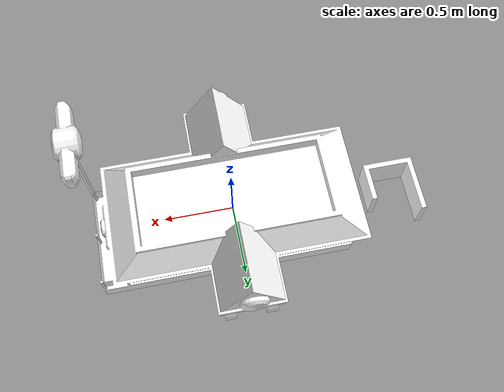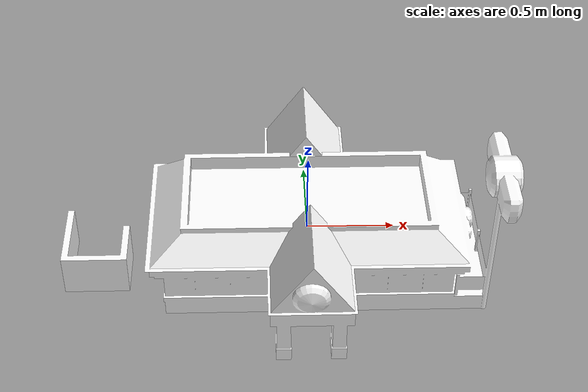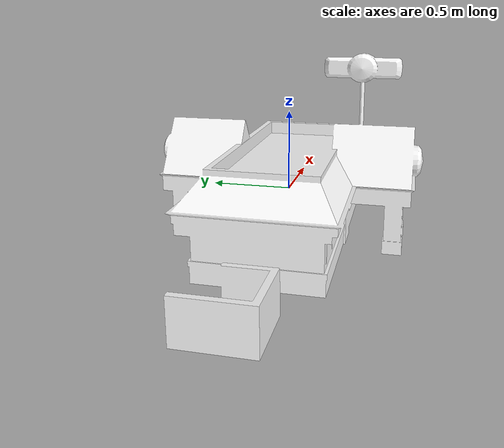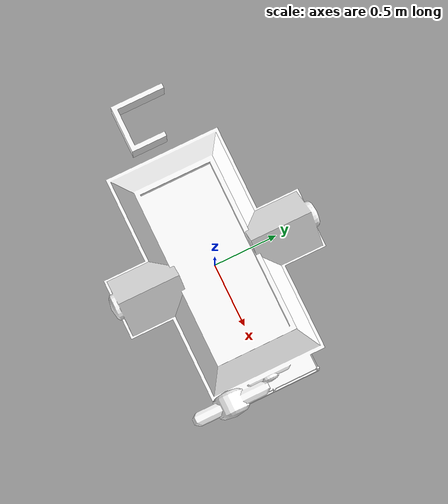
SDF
<?xml version="1.0" ?>
<sdf version="1.5">
  <model name="Fast Food">
    <plugin filename="gz-sim-contact-system"
          name="gz::sim::systems::Contact">
    </plugin>
    <static>true</static>
    <link name="link">
      <pose>0 0 0 0 0 0</pose>
      <collision name="collision">
        <geometry>
          <mesh>
            <scale>0.3 0.3 0.2</scale>
            <uri>model://fast_food/meshes/fast_food.dae</uri>
          </mesh>
        </geometry>
      </collision>
      <visual name="visual">
        <geometry>
          <mesh>
            <scale>0.3 0.3 0.2</scale>
            <uri>model://fast_food/meshes/fast_food.dae</uri>
          </mesh>
        </geometry>
        <material>
          <script>
            <uri>model://fast_food/materials/scripts</uri>
            <uri>model://fast_food/materials/textures</uri>
            <name>FastFood/Diffuse</name>
          </script>
          <diffuse>1.0 1.0 1.0</diffuse>
          <specular>1.0 1.0 1.0</specular>
          <pbr>
          <metal>
          <albedo_map>materials/textures/FastFood_Diffuse.png</albedo_map>
          </metal>
          </pbr>
          <shader type="normal_map_tangent_space">
            <normal_map>materials/textures/FastFood_Normal.png</normal_map>
          </shader>
        </material>
      </visual>
      <sensor name='sensor_contact' type='contact'>
          <contact>
            <collision>collision</collision>
            <topic>/collision_detect</topic>
          </contact>
          <always_on>1</always_on>
          <update_rate>100</update_rate>
        </sensor>
    </link>
  </model>
</sdf>
